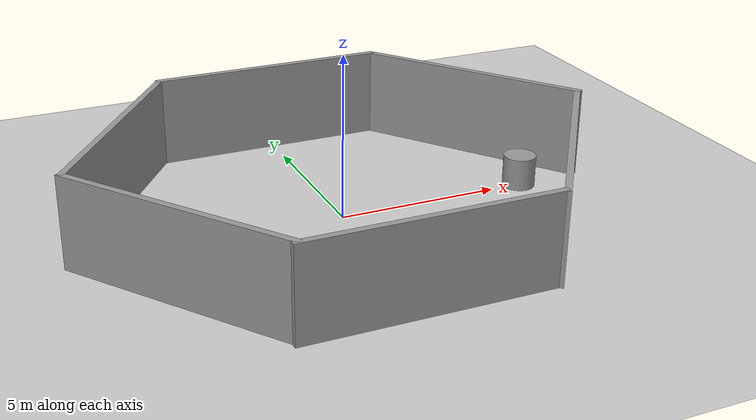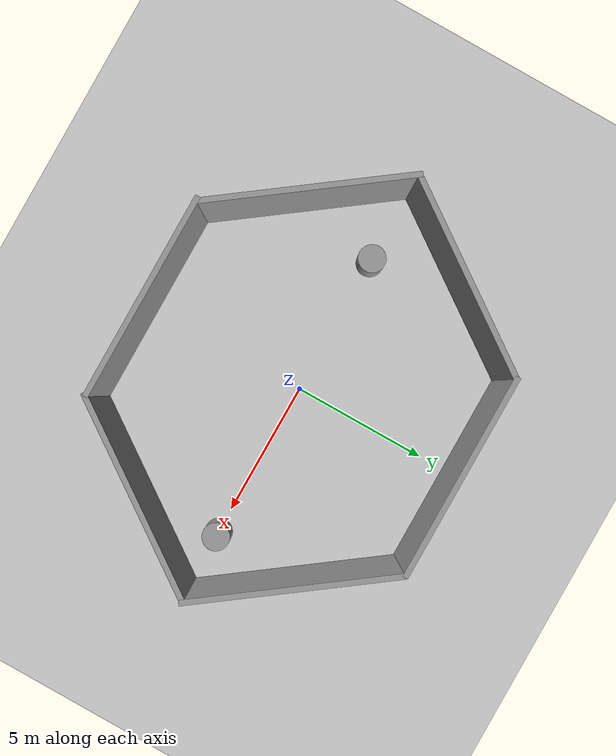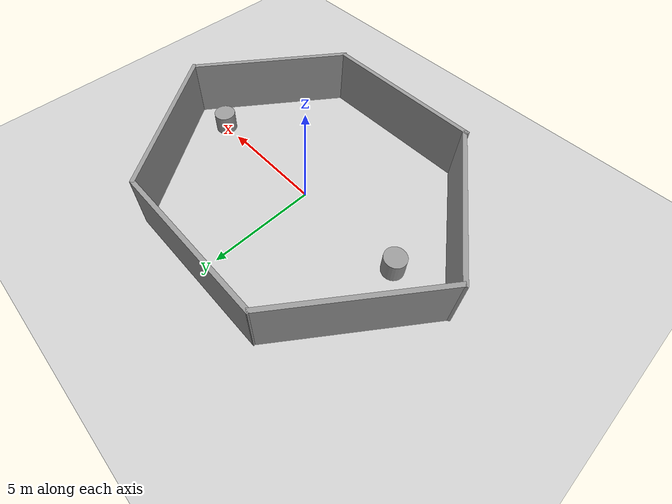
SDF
<sdf version="1.7">
 <world name="default">
  <light name="sun" type="directional">
   <pose>0 0 10 0 -0 0</pose>
   <diffuse>0.8 0.8 0.8 1</diffuse>
   <specular>0.2 0.2 0.2 1</specular>
   <attenuation>
    <range>1000</range>
    <constant>0.9</constant>
    <linear>0.01</linear>
    <quadratic>0.001</quadratic>
   </attenuation>
   <direction>-0.5 0.1 -0.9</direction>
   <spot><inner_angle>0</inner_angle><outer_angle>0</outer_angle><falloff>0</falloff></spot>
  </light>
  <model name="ground_plane">
   <static>1</static>
   <link name="link">
    <collision name="collision">
     <geometry><plane><normal>0 0 1</normal><size>100 100</size></plane></geometry>
     <surface><friction><ode><mu>100</mu><mu2>50</mu2></ode></friction></surface>
    </collision>
    <visual name="visual">
     <cast_shadows>0</cast_shadows>
     <geometry><plane><normal>0 0 1</normal><size>100 100</size></plane></geometry>
     <material>
      <script><uri>file://media/materials/scripts/gazebo.material</uri><name>Gazebo/Grey</name></script>
     </material>
    </visual>
   </link>
  </model>
  <gravity>0 0 -9.8</gravity>
  <magnetic_field>6e-06 2.3e-05 -4.2e-05</magnetic_field>
  <atmosphere type="adiabatic"/>
  <physics type="ode">
   <max_step_size>0.001</max_step_size>
   <real_time_factor>1</real_time_factor>
   <real_time_update_rate>1000</real_time_update_rate>
  </physics>
  <scene><ambient>0.4 0.4 0.4 1</ambient><background>0.7 0.7 0.7 1</background><shadows>1</shadows></scene>
  <audio><device>default</device></audio>
  <spherical_coordinates>
   <surface_model>EARTH_WGS84</surface_model>
   <latitude_deg>0</latitude_deg>
   <longitude_deg>0</longitude_deg>
   <elevation>0</elevation>
   <heading_deg>0</heading_deg>
  </spherical_coordinates>
  <model name="grey_wall">
   <static>1</static>
   <link name="link">
    <pose>0 0 1.4 0 -0 0</pose>
    <collision name="collision"><geometry><box><size>7.5 0.2 2.8</size></box></geometry></collision>
    <visual name="visual">
     <cast_shadows>0</cast_shadows>
     <geometry><box><size>7.5 0.2 2.8</size></box></geometry>
     <material>
      <script>
       <uri>model://grey_wall/materials/scripts</uri>
       <uri>model://grey_wall/materials/textures</uri>
       <name>vrc/grey_wall</name>
      </script>
     </material>
    </visual>
   </link>
   <pose>-0.091285 -5.95473 0 0 -0 0</pose>
  </model>
  <model name="grey_wall_clone">
   <static>1</static>
   <link name="link">
    <pose>0 0 1.4 0 -0 0</pose>
    <collision name="collision"><geometry><box><size>7.5 0.2 2.8</size></box></geometry></collision>
    <visual name="visual">
     <cast_shadows>0</cast_shadows>
     <geometry><box><size>7.5 0.2 2.8</size></box></geometry>
     <material>
      <script>
       <uri>model://grey_wall/materials/scripts</uri>
       <uri>model://grey_wall/materials/textures</uri>
       <name>vrc/grey_wall</name>
      </script>
     </material>
    </visual>
   </link>
   <pose>-0.095172 6.01338 0 0 -0 0</pose>
  </model>
  <model name="grey_wall_clone_0">
   <static>1</static>
   <link name="link">
    <pose>0 0 1.4 0 -0 0</pose>
    <collision name="collision"><geometry><box><size>7.5 0.2 2.8</size></box></geometry></collision>
    <visual name="visual">
     <cast_shadows>0</cast_shadows>
     <geometry><box><size>7.5 0.2 2.8</size></box></geometry>
     <material>
      <script>
       <uri>model://grey_wall/materials/scripts</uri>
       <uri>model://grey_wall/materials/textures</uri>
       <name>vrc/grey_wall</name>
      </script>
     </material>
    </visual>
   </link>
   <pose>-5.85196 -2.96104 0 0 0 -0.938571</pose>
  </model>
  <model name="grey_wall_clone_0_clone">
   <static>1</static>
   <link name="link">
    <pose>0 0 1.4 0 -0 0</pose>
    <collision name="collision"><geometry><box><size>7.5 0.2 2.8</size></box></geometry></collision>
    <visual name="visual">
     <cast_shadows>0</cast_shadows>
     <geometry><box><size>7.5 0.2 2.8</size></box></geometry>
     <material>
      <script>
       <uri>model://grey_wall/materials/scripts</uri>
       <uri>model://grey_wall/materials/textures</uri>
       <name>vrc/grey_wall</name>
      </script>
     </material>
    </visual>
   </link>
   <pose>-5.86506 3.00064 0 0 0 -2.18435</pose>
  </model>
  <model name="unit_cylinder">
   <pose>5.93838 0.000222 0.499998 3e-06 -3e-06 0</pose>
   <link name="link">
    <inertial>
     <mass>1</mass>
     <inertia><ixx>0.145833</ixx><ixy>0</ixy><ixz>0</ixz><iyy>0.145833</iyy><iyz>0</iyz><izz>0.125</izz></inertia>
    </inertial>
    <collision name="collision">
     <geometry><cylinder><radius>0.5</radius><length>1</length></cylinder></geometry>
    </collision>
    <visual name="visual">
     <geometry><cylinder><radius>0.5</radius><length>1</length></cylinder></geometry>
     <material>
      <script><name>Gazebo/Grey</name><uri>file://media/materials/scripts/gazebo.material</uri></script>
     </material>
    </visual>
   </link>
  </model>
  <model name="unit_cylinder_0">
   <pose>-5.21291 -0.029379 0.499998 3e-06 -4e-06 0</pose>
   <link name="link">
    <inertial>
     <mass>1</mass>
     <inertia><ixx>0.145833</ixx><ixy>0</ixy><ixz>0</ixz><iyy>0.145833</iyy><iyz>0</iyz><izz>0.125</izz></inertia>
    </inertial>
    <collision name="collision">
     <geometry><cylinder><radius>0.5</radius><length>1</length></cylinder></geometry>
    </collision>
    <visual name="visual">
     <geometry><cylinder><radius>0.5</radius><length>1</length></cylinder></geometry>
     <material>
      <script><name>Gazebo/Grey</name><uri>file://media/materials/scripts/gazebo.material</uri></script>
     </material>
    </visual>
   </link>
  </model>
  <model name="grey_wall_clone_0_clone_0">
   <static>1</static>
   <link name="link">
    <pose>0 0 1.4 0 -0 0</pose>
    <collision name="collision"><geometry><box><size>7.5 0.2 2.8</size></box></geometry></collision>
    <visual name="visual">
     <cast_shadows>0</cast_shadows>
     <geometry><box><size>7.5 0.2 2.8</size></box></geometry>
     <material>
      <script>
       <uri>model://grey_wall/materials/scripts</uri>
       <uri>model://grey_wall/materials/textures</uri>
       <name>vrc/grey_wall</name>
      </script>
     </material>
    </visual>
   </link>
   <pose>5.7794 3.03028 0 0 0 -0.938571</pose>
  </model>
  <model name="grey_wall_clone_0_clone_clone">
   <static>1</static>
   <link name="link">
    <pose>0 0 1.4 0 -0 0</pose>
    <collision name="collision"><geometry><box><size>7.5 0.2 2.8</size></box></geometry></collision>
    <visual name="visual">
     <cast_shadows>0</cast_shadows>
     <geometry><box><size>7.5 0.2 2.8</size></box></geometry>
     <material>
      <script>
       <uri>model://grey_wall/materials/scripts</uri>
       <uri>model://grey_wall/materials/textures</uri>
       <name>vrc/grey_wall</name>
      </script>
     </material>
    </visual>
   </link>
   <pose>5.7229 -3.00448 0 0 0 -2.18435</pose>
  </model>
 </world>
</sdf>
